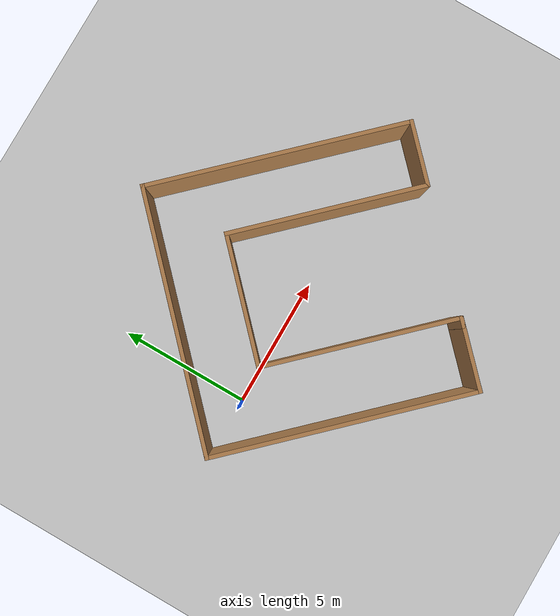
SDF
<sdf version="1.6">
 <world name="default">
  <light name="sun" type="directional">
   <pose>0 0 15 0 -0 0</pose>
   <diffuse>1 1 1 1</diffuse>
   <specular>0.1 0.1 0.1 1</specular>
   <attenuation>
    <range>1000</range>
    <constant>0.9</constant>
    <linear>0.01</linear>
    <quadratic>0.001</quadratic>
   </attenuation>
   <direction>-0.5 0.5 -1</direction>
  </light>
  <model name="ground_plane">
   <static>1</static>
   <link name="link">
    <collision name="collision">
     <geometry><plane><normal>0 0 1</normal><size>100 100</size></plane></geometry>
     <surface><friction><ode><mu>100</mu><mu2>50</mu2></ode></friction></surface>
    </collision>
    <visual name="visual">
     <transparency>1</transparency>
     <cast_shadows>0</cast_shadows>
     <geometry><plane><normal>0 0 1</normal><size>100 100</size></plane></geometry>
     <material>
      <script><uri>file://media/materials/scripts/gazebo.material</uri><name>Gazebo/Grey</name></script>
     </material>
    </visual>
   </link>
  </model>
  <gravity>0 0 -9.8</gravity>
  <magnetic_field>6e-06 2.3e-05 -4.2e-05</magnetic_field>
  <atmosphere type="adiabatic"/>
  <physics name="default_physics" default="0" type="ode">
   <max_step_size>0.001</max_step_size>
   <real_time_factor>1</real_time_factor>
   <real_time_update_rate>1000</real_time_update_rate>
  </physics>
  <scene><ambient>0.4 0.4 0.4 1</ambient><background>0.7 0.7 0.7 1</background><shadows>1</shadows></scene>
  <spherical_coordinates>
   <surface_model>EARTH_WGS84</surface_model>
   <latitude_deg>0</latitude_deg>
   <longitude_deg>0</longitude_deg>
   <elevation>0</elevation>
   <heading_deg>0</heading_deg>
  </spherical_coordinates>
  <model name="u-shaped-room">
   <pose>4.76248 -0.074715 0 0 0 -2.37716</pose>
   <link name="Wall_12">
    <collision name="Wall_12_Collision">
     <geometry><box><size>2.5 0.15 2.5</size></box></geometry>
     <pose>0 0 1.25 0 -0 0</pose>
    </collision>
    <visual name="Wall_12_Visual">
     <pose>0 0 1.25 0 -0 0</pose>
     <geometry><box><size>2.5 0.15 2.5</size></box></geometry>
     <material>
      <script><uri>file://media/materials/scripts/gazebo.material</uri><name>Gazebo/Wood</name></script>
      <ambient>1 1 1 1</ambient>
     </material>
    </visual>
    <pose>-3.75 4.925 0 0 -0 0</pose>
   </link>
   <link name="Wall_17">
    <collision name="Wall_17_Collision">
     <geometry><box><size>7.5 0.15 2.5</size></box></geometry>
     <pose>0 0 1.25 0 -0 0</pose>
    </collision>
    <visual name="Wall_17_Visual">
     <pose>0 0 1.25 0 -0 0</pose>
     <geometry><box><size>7.5 0.15 2.5</size></box></geometry>
     <material>
      <script><uri>file://media/materials/scripts/gazebo.material</uri><name>Gazebo/Wood</name></script>
      <ambient>1 1 1 1</ambient>
     </material>
    </visual>
    <pose>-2.575 1.25 0 0 0 -1.5708</pose>
   </link>
   <link name="Wall_18">
    <collision name="Wall_18_Collision">
     <geometry><box><size>5 0.15 2.5</size></box></geometry>
     <pose>0 0 1.25 0 -0 0</pose>
    </collision>
    <visual name="Wall_18_Visual">
     <pose>0 0 1.25 0 -0 0</pose>
     <geometry><box><size>5 0.15 2.5</size></box></geometry>
     <material>
      <script><uri>file://media/materials/scripts/gazebo.material</uri><name>Gazebo/Wood</name></script>
      <ambient>1 1 1 1</ambient>
     </material>
    </visual>
    <pose>-0.15 -2.425 0 0 -0 0</pose>
   </link>
   <link name="Wall_19">
    <collision name="Wall_19_Collision">
     <geometry><box><size>7.5 0.15 2.5</size></box></geometry>
     <pose>0 0 1.25 0 -0 0</pose>
    </collision>
    <visual name="Wall_19_Visual">
     <pose>0 0 1.25 0 -0 0</pose>
     <geometry><box><size>7.5 0.15 2.5</size></box></geometry>
     <material>
      <script><uri>file://media/materials/scripts/gazebo.material</uri><name>Gazebo/Wood</name></script>
      <ambient>1 1 1 1</ambient>
     </material>
    </visual>
    <pose>2.275 1.25 0 0 -0 1.5708</pose>
   </link>
   <link name="Wall_24">
    <collision name="Wall_24_Collision">
     <geometry><box><size>0.45 0.15 2.5</size></box></geometry>
     <pose>0 0 1.25 0 -0 0</pose>
    </collision>
    <visual name="Wall_24_Visual">
     <pose>0 0 1.25 0 -0 0</pose>
     <geometry><box><size>0.45 0.15 2.5</size></box></geometry>
     <material>
      <script><uri>file://media/materials/scripts/gazebo.material</uri><name>Gazebo/Wood</name></script>
      <ambient>1 1 1 1</ambient>
     </material>
    </visual>
    <pose>2.425 4.925 0 0 -0 0</pose>
   </link>
   <link name="Wall_3">
    <collision name="Wall_3_Collision">
     <geometry><box><size>10 0.15 2.5</size></box></geometry>
     <pose>0 0 1.25 0 -0 0</pose>
    </collision>
    <visual name="Wall_3_Visual">
     <pose>0 0 1.25 0 -0 0</pose>
     <geometry><box><size>10 0.15 2.5</size></box></geometry>
     <material>
      <script><uri>file://media/materials/scripts/gazebo.material</uri><name>Gazebo/Wood</name></script>
      <ambient>1 1 1 1</ambient>
     </material>
    </visual>
    <pose>-4.925 0 0 0 0 -1.5708</pose>
   </link>
   <link name="Wall_4">
    <collision name="Wall_4_Collision">
     <geometry><box><size>10 0.15 2.5</size></box></geometry>
     <pose>0 0 1.25 0 -0 0</pose>
    </collision>
    <visual name="Wall_4_Visual">
     <pose>0 0 1.25 0 -0 0</pose>
     <geometry><box><size>10 0.15 2.5</size></box></geometry>
     <material>
      <script><uri>file://media/materials/scripts/gazebo.material</uri><name>Gazebo/Wood</name></script>
      <ambient>1 1 1 1</ambient>
     </material>
    </visual>
    <pose>0 -4.925 0 0 -0 0</pose>
   </link>
   <link name="Wall_5">
    <collision name="Wall_5_Collision">
     <geometry><box><size>10 0.15 2.5</size></box></geometry>
     <pose>0 0 1.25 0 -0 0</pose>
    </collision>
    <visual name="Wall_5_Visual">
     <pose>0 0 1.25 0 -0 0</pose>
     <geometry><box><size>10 0.15 2.5</size></box></geometry>
     <material>
      <script><uri>file://media/materials/scripts/gazebo.material</uri><name>Gazebo/Wood</name></script>
      <ambient>1 1 1 1</ambient>
     </material>
    </visual>
    <pose>4.925 0 0 0 -0 1.5708</pose>
   </link>
   <link name="Wall_6">
    <collision name="Wall_6_Collision">
     <geometry><box><size>2.5 0.15 2.5</size></box></geometry>
     <pose>0 0 1.25 0 -0 0</pose>
    </collision>
    <visual name="Wall_6_Visual">
     <pose>0 0 1.25 0 -0 0</pose>
     <geometry><box><size>2.5 0.15 2.5</size></box></geometry>
     <material>
      <script><uri>file://media/materials/scripts/gazebo.material</uri><name>Gazebo/Wood</name></script>
      <ambient>1 1 1 1</ambient>
     </material>
    </visual>
    <pose>3.75 4.925 0 0 -0 3.14159</pose>
   </link>
   <link name="Wall_7">
    <collision name="Wall_7_Collision">
     <geometry><box><size>0.15 0.15 2.5</size></box></geometry>
     <pose>0 0 1.25 0 -0 0</pose>
    </collision>
    <visual name="Wall_7_Visual">
     <pose>0 0 1.25 0 -0 0</pose>
     <geometry><box><size>0.15 0.15 2.5</size></box></geometry>
     <material>
      <script><uri>file://media/materials/scripts/gazebo.material</uri><name>Gazebo/Grey</name></script>
      <ambient>1 1 1 1</ambient>
     </material>
    </visual>
    <pose>2.575 4.925 0 0 -0 0</pose>
   </link>
   <static>1</static>
  </model>
 </world>
</sdf>
